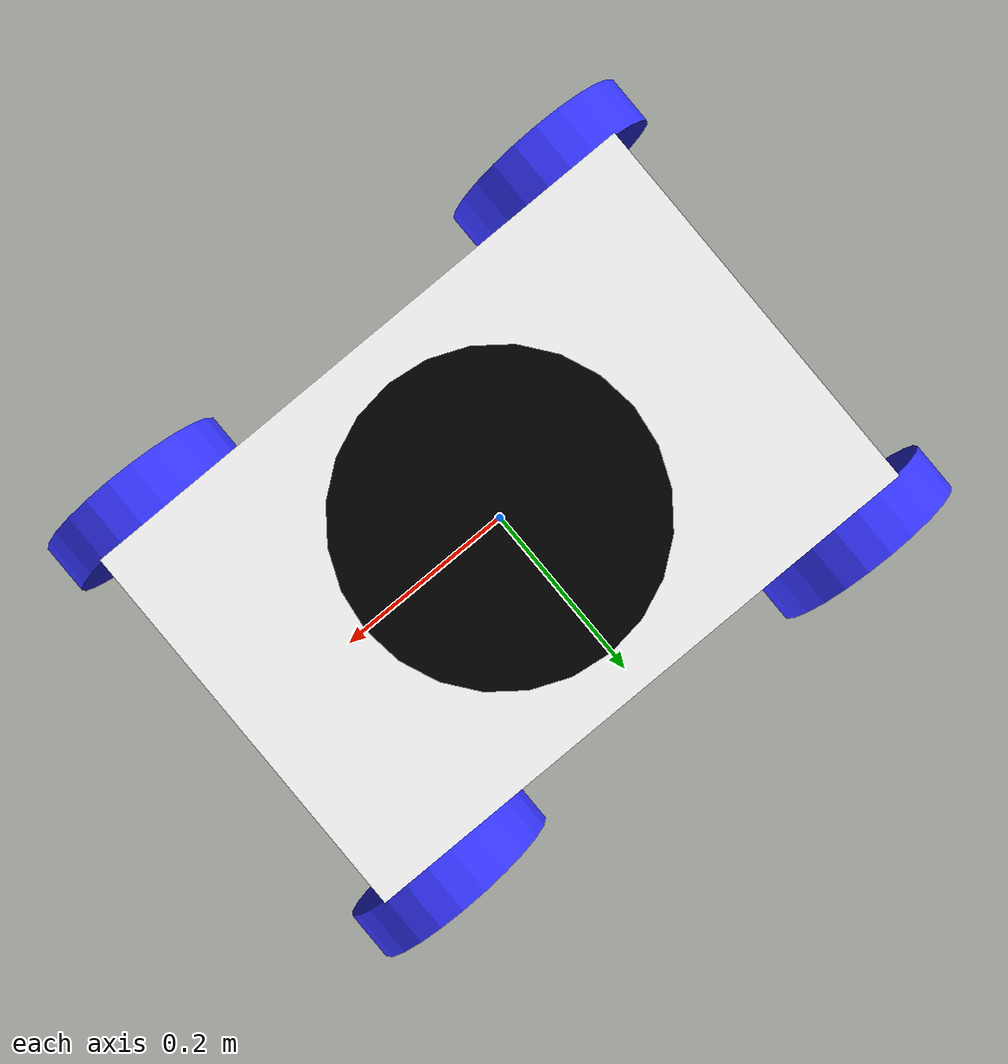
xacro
<?xml version="1.0"?>
<robot xmlns:xacro="http://www.ros.org/wiki/xacro">

    <xacro:include filename="inertial_macros.xacro"/>

    <!-- Materials -->
    <material name="white">
        <color rgba="1 1 1 1"/>
    </material>

    <material name="black">
        <color rgba="0 0 0 1"/>
    </material>

    <material name="blue">
        <color rgba="0.2 0.2 1 1"/>
    </material>

    <!-- Base Link -->
    <link name="base_link"/>

    <joint name="base_footprint_joint" type="fixed">
        <parent link="base_link"/>
        <child link="base_footprint"/>
        <origin xyz="0 0 0" rpy="0 0 0"/>
    </joint>

    <link name="base_footprint"/>

    <!-- Chassis -->
    <joint name="chassis_joint" type="fixed">
        <parent link="base_link"/>
        <child link="chassis"/>
        <origin xyz="0 0 0" rpy="0 0 0"/>
    </joint>

    <link name="chassis">
        <visual>
            <origin xyz="0 0 0.15"/>
            <geometry>
                <box size="0.6 0.4 0.1"/>
            </geometry>
            <material name="white"/>
        </visual>
        <collision>
            <origin xyz="0 0 0.15"/>
            <geometry>
                <box size="0.6 0.4 0.1"/>
            </geometry>
        </collision>
        <inertial>
            <mass value="1.5"/>
            <origin xyz="0 0 0.15"/>
            <inertia ixx="0.02" iyy="0.02" izz="0.02" ixy="0" ixz="0" iyz="0"/>
        </inertial>
    </link>

    <!-- Steering Wheel -->
    <joint name="steering_wheel_joint" type="revolute">
        <parent link="chassis"/>
        <child link="steering_wheel"/>
        <origin xyz="0 0 0.25" rpy="0 0 0"/>
        <axis xyz="0 1 0"/>
        <limit effort="5.0" velocity="2.0" lower="-0.75" upper="0.75"/>
    </joint>

    <link name="steering_wheel">
        <visual>
            <origin xyz="0 0 0"/>
            <geometry>
                <cylinder radius="0.15" length="0.02"/>
            </geometry>
            <material name="black"/>
        </visual>
    </link>

    <!-- Rear Left Wheel -->
    <joint name="rear_left_wheel_joint" type="continuous">
        <parent link="chassis"/>
        <child link="rear_left_wheel"/>
        <origin xyz="-0.25 0.225 0.1" rpy="1.57 0 0"/>
        <axis xyz="0 0 -1"/>
    </joint>

    <link name="rear_left_wheel">
        <visual>
            <geometry>
                <cylinder radius="0.1" length="0.05"/>
            </geometry>
            <material name="blue"/>
        </visual>
        <collision>
            <geometry>
                <cylinder radius="0.1" length="0.05"/>
            </geometry>
        </collision>
        <inertial>
            <mass value="0.1"/>
            <inertia ixx="0.001" iyy="0.001" izz="0.001" ixy="0" ixz="0" iyz="0"/>
        </inertial>
    </link>

    <!-- Rear Right Wheel -->
    <joint name="rear_right_wheel_joint" type="continuous">
        <parent link="chassis"/>
        <child link="rear_right_wheel"/>
        <origin xyz="-0.25 -0.225 0.1" rpy="1.57 0 0"/>
        <axis xyz="0 0 -1"/>
    </joint>

    <link name="rear_right_wheel">
        <visual>
            <geometry>
                <cylinder radius="0.1" length="0.05"/>
            </geometry>
            <material name="blue"/>
        </visual>
        <collision>
            <geometry>
                <cylinder radius="0.1" length="0.05"/>
            </geometry>
        </collision>
        <inertial>
            <mass value="0.1"/>
            <inertia ixx="0.001" iyy="0.001" izz="0.001" ixy="0" ixz="0" iyz="0"/>
        </inertial>
    </link>

    <!-- Front Left Steering Mechanism -->
    <joint name="front_left_wheel_steer_joint" type="revolute">
        <parent link="chassis"/>
        <child link="front_left_wheel_steer"/>
        <origin xyz="0.25 0.225 0.1" rpy="0 0 0"/>
        <axis xyz="0 0 1"/>
        <limit effort="10.0" velocity="1.0" lower="-0.5" upper="0.5"/>
    </joint>

    <link name="front_left_wheel_steer">
        <visual>
            <geometry>
                <box size="0.01 0.01 0.01"/>
            </geometry>
            <material name="black"/>
        </visual>
    </link>

    <joint name="front_left_wheel_joint" type="continuous">
        <parent link="front_left_wheel_steer"/>
        <child link="front_left_wheel"/>
        <origin xyz="0 0 0" rpy="1.57 0 0"/>
        <axis xyz="0 0 -1"/>
    </joint>

    <link name="front_left_wheel">
        <visual>
            <geometry>
                <cylinder radius="0.1" length="0.05"/>
            </geometry>
            <material name="blue"/>
        </visual>
        <collision>
            <geometry>
                <cylinder radius="0.1" length="0.05"/>
            </geometry>
        </collision>
        <inertial>
            <mass value="0.1"/>
            <inertia ixx="0.001" iyy="0.001" izz="0.001" ixy="0" ixz="0" iyz="0"/>
        </inertial>
    </link>

    <!-- Front Right Steering Mechanism -->
    <joint name="front_right_wheel_steer_joint" type="revolute">
        <parent link="chassis"/>
        <child link="front_right_wheel_steer"/>
        <origin xyz="0.25 -0.225 0.1" rpy="0 0 0"/>
        <axis xyz="0 0 1"/>
        <limit effort="10.0" velocity="1.0" lower="-0.5" upper="0.5"/>
    </joint>

    <link name="front_right_wheel_steer">
        <visual>
            <geometry>
                <box size="0.01 0.01 0.01"/>
            </geometry>
            <material name="black"/>
        </visual>
    </link>

    <joint name="front_right_wheel_joint" type="continuous">
        <parent link="front_right_wheel_steer"/>
        <child link="front_right_wheel"/>
        <origin xyz="0 0 0" rpy="1.57 0 0"/>
        <axis xyz="0 0 -1"/>
    </joint>

    <link name="front_right_wheel">
        <visual>
            <geometry>
                <cylinder radius="0.1" length="0.05"/>
            </geometry>
            <material name="blue"/>
        </visual>
    </link>

</robot>
